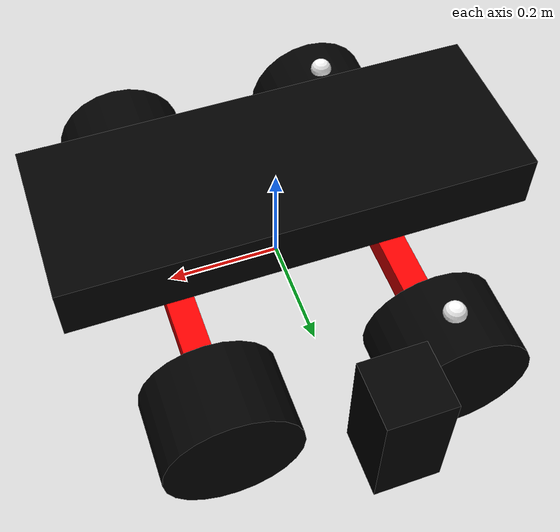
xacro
<?xml version="1.0" ?>

<robot name="Monster_Truck" xmlns:xacro="http://www.ros.org/wiki/xacro">
    <link name="base_link">
        <visual>
            <material name="Black">
                <color rgba="0 0 0 1"/>
            </material>
            <origin rpy="0 0 0" xyz="0 0 0.2"/>
            <geometry>
                <box size="0.8 0.3 0.1"/>
            </geometry>
        </visual>
    </link>

    <link name="front">
        <visual>
            <material name="Black">
                <color rgba="0 0 0 1"/>
            </material>
            <origin rpy="0 0 0" xyz="0 0.5 0.25"/>
            <geometry>
                <box size="0.1 0.1 0.2"/>
            </geometry>
        </visual>
    </link>
  <joint name="front_joint_sign" type="fixed">
    <parent link="base_link"/>
    <child link="front"/>
    <origin xyz="0 0 0" rpy="0 0 0"/>
    <axis xyz="1 0 0"/>
  </joint>

<!--*****************REAR STEER***********************-->
    <link name="base_link_rear_steer">
        <visual>
            <material name="Red">
                <color rgba="1 0 0 1"/>
            </material>
            <origin rpy="0 0 0" xyz="-0.2 0 0.1"/>
            <geometry>
                <box size="0.05 0.1 0.16"/>
            </geometry>
        </visual>
    </link>
  <joint name="fixed_rear" type="continuous">
    <parent link="base_link"/>
    <child link="base_link_rear_steer"/>
    <origin xyz="0 0 0" rpy="0 0 0"/>
    <axis xyz="0 0 -1"/>
  </joint>

    <link name="rear_steer">
        <visual>
            <material name="Red">
                <color rgba="1 0 0 1"/>
            </material>
            <origin rpy="0 0 0" xyz="-0.2 0 0"/>
            <geometry>
                <box size="0.05 0.5 0.05"/>
            </geometry>
        </visual>
    </link>
  <joint name="rear_joint" type="fixed">
    <parent link="base_link_rear_steer"/>
    <child link="rear_steer"/>
    <origin xyz="0 0 0" rpy="0 0 0"/>
    <axis xyz="0 0 0"/>
  </joint>
<!--****************REAR WHEELS************************-->
  <link name="left_wheel_rear">
        <visual>
   	        <material name="Black">
                <color rgba="0 0 0 1"/>
            </material>
             <origin xyz="0 0 0" rpy="1.570795 0 0" />
            <geometry>
                <cylinder length="0.15" radius="0.12" />
            </geometry>
        </visual>
    </link>
  <joint name="joint_left_wheel_rear" type="continuous">
    <parent link="rear_steer"/>
    <child link="left_wheel_rear"/>
    <origin xyz="-0.20 0.30 0" rpy="0 0 0" />
    <axis xyz="0 1 0" />
  <dynamics damping="0.7"/>
  <limit effort="1000" velocity="0.5" lower="-3.14" upper="3.14" />
  </joint>

<link name="right_wheel_rear">
        <visual>
   	        <material name="Black">
                <color rgba="0 0 0 1"/>
            </material>
             <origin xyz="0 0 0" rpy="1.570795 0 0" />
            <geometry>
                <cylinder length="0.15" radius="0.12" />
            </geometry>
        </visual>
    </link>
  <joint name="joint_right_wheel_rear" type="continuous">
    <parent link="rear_steer"/>
    <child link="right_wheel_rear"/>
    <origin xyz="-0.20 -0.30 0" rpy="0 0 0" />
    <axis xyz="0 1 0" />
  <dynamics damping="0.7"/>
  <limit effort="1000" velocity="0.5" lower="-3.14" upper="3.14" />
  </joint>

<!--*****************FRONT STEER***********************-->
    <link name="base_link_front_steer">
        <visual>
            <material name="Red">
                <color rgba="1 0 0 1"/>
            </material>
            <origin rpy="0 0 0" xyz="0.2 0 0.1"/>
            <geometry>
                <box size="0.05 0.1 0.16"/>
            </geometry>
        </visual>
    </link>
  <joint name="fixed_front" type="fixed">
    <parent link="base_link"/>
    <child link="base_link_front_steer"/>
    <origin xyz="0 0 0" rpy="0 0 0"/>
    <axis xyz="0 0 0"/>
  </joint>

    <link name="front_steer">
        <visual>
            <material name="Red">
                <color rgba="1 0 0 1"/>
            </material>
            <origin rpy="0 0 0" xyz="0.2 0 0"/>
            <geometry>
                <box size="0.05 0.5 0.05"/>
            </geometry>
        </visual>
    </link>
  <joint name="front_joint" type="fixed">
    <parent link="base_link_front_steer"/>
    <child link="front_steer"/>
    <origin xyz="0 0 0" rpy="0 0 0"/>
    <axis xyz="0 0 0"/>
  </joint>

<!--****************REAR WHEELS************************-->
  <link name="left_wheel_front">
        <visual>
   	        <material name="Black">
                <color rgba="0 0 0 1"/>
            </material>
             <origin xyz="0 0 0" rpy="1.570795 0 0" />
            <geometry>
                <cylinder length="0.15" radius="0.12" />
            </geometry>
        </visual>
    </link>
  <joint name="joint_left_wheel_front" type="continuous">
    <parent link="front_steer"/>
    <child link="left_wheel_front"/>
    <origin xyz="0.20 0.30 0" rpy="0 0 0" />
    <axis xyz="0 0 1" />
  <dynamics damping="0.7"/>
  <limit effort="1000" velocity="0.5" lower="-3.14" upper="3.14" />
  </joint>

<link name="right_wheel_front">
        <visual>
   	        <material name="Black">
                <color rgba="0 0 0 1"/>
            </material>
             <origin xyz="0 0 0" rpy="1.570795 0 0" />
            <geometry>
                <cylinder length="0.15" radius="0.12" />
            </geometry>
        </visual>
    </link>
  <joint name="joint_right_wheel_front" type="continuous">
    <parent link="front_steer"/>
    <child link="right_wheel_front"/>
    <origin xyz="0.20 -0.30 0" rpy="0 0 0" />
    <axis xyz="0 0 1" />
  <dynamics damping="0.7"/>
  <limit effort="1000" velocity="0.5" lower="-3.14" upper="3.14" />
  </joint>

    <link name="sign_left_front">
        <visual>
            <material name="White">
                <color rgba="1 1 1 1"/>
            </material>
            <origin rpy="0 0 0" xyz="0 0 0.12"/>
            <geometry>
                <sphere radius="0.02" />
            </geometry>
        </visual>
    </link>
  <joint name="fixed_sign_left_f" type="fixed">
    <parent link="left_wheel_rear"/>
    <child link="sign_left_front"/>
    <origin xyz="0 0 0" rpy="0 0 0"/>
    <axis xyz="1 0 0"/>
  </joint>

    <link name="sign_right_rear">
        <visual>
            <material name="White">
                <color rgba="1 1 1 1"/>
            </material>
            <origin rpy="0 0 0" xyz="0 0 0.12"/>
            <geometry>
                <sphere radius="0.02" />
            </geometry>
        </visual>
    </link>
  <joint name="fixed_sign_right_f" type="fixed">
    <parent link="right_wheel_rear"/>
    <child link="sign_right_rear"/>
    <origin xyz="0 0 0" rpy="0 0 0"/>
    <axis xyz="1 0 0"/>
  </joint>

</robot>
